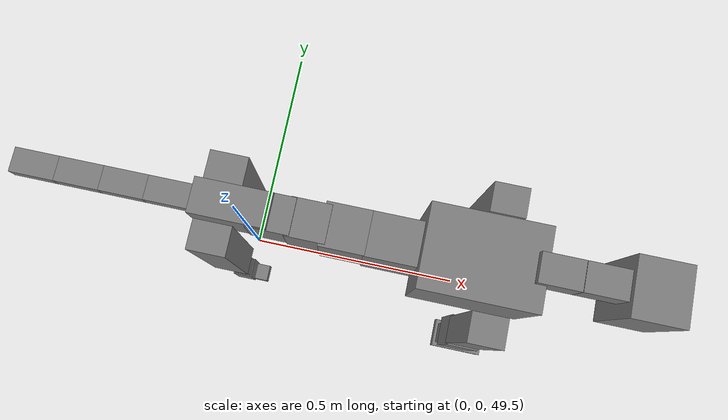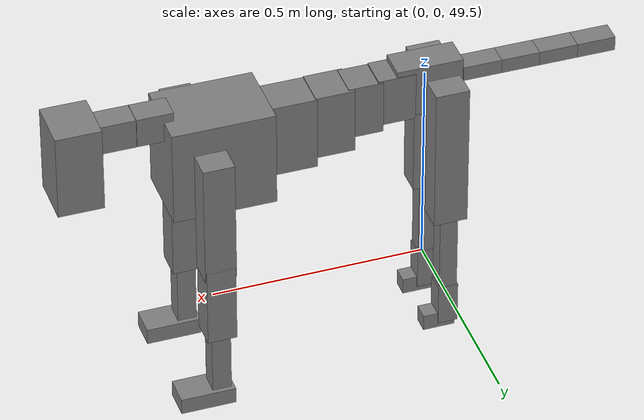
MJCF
<mujoco model="dog">

    <default>
        <joint armature="0.02" stiffness="1" damping="0.2" limited="true"/>
        <geom condim="3" friction="1 0.05 0.05" margin="0.01"/>
        <motor ctrllimited="true" ctrlrange="-1.0 1.0" forcelimited="true" gear="50"/>
    </default>

    <compiler inertiafromgeom="true" angle="radian"/>

    <option timestep="0.016" iterations="50" tolerance="1e-10" solver="Newton" jacobian="dense" cone="pyramidal"/>

    <size nconmax="20000" njmax="60000" nstack="5000000"/>
    <visual>
        <map force="0.1" zfar="30"/>
        <rgba haze="0.15 0.25 0.35 1"/>
        <quality shadowsize="2048"/>
        <global offwidth="800" offheight="800"/>
    </visual>

    <asset>
        <texture type="skybox" builtin="gradient" rgb1="0.3 0.5 0.7" rgb2="0 0 0" width="512" height="512"/>
        <texture name="texplane" type="2d" builtin="checker" rgb1=".2 .3 .4" rgb2=".1 0.15 0.2" width="512" height="512"
                 mark="cross" markrgb=".8 .8 .8"/>
        <texture name="texgeom" type="cube" builtin="flat" mark="cross" width="127" height="1278" rgb1="0.8 0.6 0.4"
                 rgb2="0.8 0.6 0.4" markrgb="1 1 1" random="0.01"/>

        <material name="matplane" reflectance="0.3" texture="texplane" texrepeat="1 1" texuniform="true"/>
        <material name="matgeom" texture="texgeom" texuniform="true" rgba="0.8 0.6 .4 1"/>
    </asset>

    <worldbody>
        <geom name="floor" pos="0 0 0" size="0 0 .25" type="plane" material="matplane" condim="3"/>

        <light directional="false" diffuse=".2 .2 .2" specular="0 0 0" pos="0 0 5" dir="0 0 -1" castshadow="false"/>
        <light mode="targetbodycom" target="torso" directional="false" diffuse=".8 .8 .8" specular="0.3 0.3 0.3"
               pos="0 0 4.0" dir="0 0 -1"/>

        <body name="root" pos="0 0 50">
            <freejoint name="root_1"/>
            <geom type="box" pos="0 0 -0.02" size="0.0774  0.0358  0.063" density="2030"/>

            <body name="spine1" pos="0.054 0 0">
                <joint name="spine1_y" axis="0 1 0" range="0 0.7" limited="true"/>
                <geom type="box" pos="0.02375 0 -0.03" size="0.04375  0.0375  0.05985" density="2030"/>

                <body name="spine2" pos="0.0612 0 0">
                    <joint name="spine2_y" axis="0 1 0" range="-0.15 0.15" limited="true"/>
                    <geom type="box" pos="0.03555  0  -0.04" size="0.04055  0.039  0.06615" density="2030"/>

                    <body name="spine3" pos="0.0730 0 0">
                        <joint name="spine3_y" axis="0 1 0" range="-0.15 0.15" limited="true"/>
                        <geom type="box" pos="0.03555  0  -0.057" size="0.04555  0.0445  0.081" density="2030"/>

                        <body name="spine4" pos="0.0780 0 0">
                            <joint name="spine4_y" axis="0 1 0" range="-0.15 0.15" limited="true"/>
                            <geom type="box" pos="0.05265  0  -0.07" size="0.05265  0.045  0.09135" density="2030"/>

                            <body name="torso" pos="0.1082 0 0">
                                <joint name="torso_y" axis="0 1 0" range="-0.15 0.15" limited="true"/>
                                <geom type="box" pos="0.11925  0  -0.085" size="0.11925  0.085  0.11745"
                                      density="2030"/>

                                <body name="neck1" pos="0.2160  0   0.0180">
                                    <joint name="neck1_y" axis="0 1 0" range="-1.2  -1" limited="true"/>
                                    <geom type="box" pos="0.0423  0  0" size="0.0423  0.03  0.036" density="2325"/>

                                    <body name="neck2" pos="0.0853  0  0">
                                        <joint name="neck2_y" axis="0 1 0" range="0.1  0" limited="true"/>
                                        <geom type="box" pos="0.0423  0  0" size="0.0423  0.03  0.036" density="2325"/>

                                        <body name="head" pos="0.0853  0  0">
                                            <joint name="head_y" axis="0 1 0" range="-0.3  -0.2" limited="true"/>
                                            <geom type="box" pos="0.0531  0  -0.055" size="0.0531  0.06  0.1044"
                                                  density="4030"/>

                                        </body>
                                    </body>
                                </body>

                                <body name="front_shoulder" pos="0.156  0   -0.0480">
                                    <joint name="front_shoulder_y" axis="0 1 0" range="-1 1.5" limited="true"/>
                                    <geom type="box" pos="0 0.13 -0.1260" size="0.0364  0.0311  0.1526" density="1158"/>
                                    <geom type="box" pos="0 -0.13 -0.1260" size="0.0364  0.0311  0.1526"
                                          density="1158"/>

                                    <body name="front_elbow" pos="0  0  -0.2520">
                                        <joint name="front_elbow_y" axis="0 1 0" range="-2 0" limited="true"/>
                                        <geom type="box" pos="0 0.13 -0.0980" size="0.0339  0.0347  0.0980"
                                              density="1081"/>
                                        <geom type="box" pos="0 -0.13 -0.0980" size="0.0339  0.0347  0.0980"
                                              density="1081"/>

                                        <body name="front_wrist" pos="0  0  -0.1959">
                                            <joint name="front_wrist_y" axis="0 1 0" range="-0.2 0" limited="true"/>
                                            <geom type="box" pos="0 0.13 -0.0813" size="0.0222  0.0246  0.0945"
                                                  density="1664"/>
                                            <geom type="box" pos="0 -0.13 -0.0813" size="0.0222  0.0246  0.0945"
                                                  density="1664"/>

                                            <body name="front_finger_end" pos="0  0  -0.1627">
                                                <joint name="front_finger_y" axis="0 1 0" range="-0.4 1"
                                                       limited="true"/>
                                                <geom type="box" pos="0.0351  0.13  -0.0048"
                                                      size="0.0644  0.0351  0.0198" density="1515"/>
                                                <geom type="box" pos="0.0351  -0.13  -0.0048"
                                                      size="0.0644  0.0351  0.0198" density="1515"/>

                                            </body>

                                        </body>
                                    </body>
                                </body>

                            </body>
                        </body>
                    </body>
                </body>
            </body>

            <body name="back_hip" pos="-0.03 0 -0.018">
                <joint name="back_hip_y" axis="0 1 0" range="-1.5 0.3" limited="true"/>
                <geom type="box" pos="0 0.07 -0.1561" size="0.0394  0.0309  0.1789" density="1154"/>
                <geom type="box" pos="0 -0.07 -0.1561" size="0.0394  0.0309  0.1789" density="1154"/>

                <body name="back_knee" pos="0  0  -0.3121">
                    <joint name="back_knee_y" axis="0 1 0" range="0 2.8" limited="true"/>
                    <geom type="box" pos="0 0.07 -0.1120" size="0.0211  0.0208  0.1276" density="1227"/>
                    <geom type="box" pos="0 -0.07 -0.1120" size="0.0211  0.0208  0.1276" density="1227"/>

                    <body name="back_ankle" pos="0  0  -0.2240">
                        <joint name="back_ankle_y" axis="0 1 0" range="-2.2 0" limited="true"/>
                        <geom type="box" pos="0 0.07 -0.0400" size="0.0235  0.0235  0.0512" density="1284"/>
                        <geom type="box" pos="0 -0.07 -0.0400" size="0.0235  0.0235  0.0512" density="1284"/>

                        <body name="back_toe_end" pos="0  0  -0.0799">
                            <joint name="back_toe_y" axis="0 1 0" range="-0.4 1" limited="true"/>
                            <geom type="box" pos="0.0202  0.07  -0.0047" size="0.0371  0.0202  0.0197" density="1515"/>
                            <geom type="box" pos="0.0202  -0.07  -0.0047" size="0.0371  0.0202  0.0197" density="1515"/>

                        </body>
                    </body>
                </body>
            </body>

            <body name="tail1" pos="-0.074 0 -0.006">
                <joint name="tail1_y" axis="0 1 0" range="-0.2 0.2" limited="true"/>
                <geom type="box" pos="-0.0536  0  0" size="0.045  0.025  0.0175" density="1587"/>

                <body name="tail2" pos="-0.09 0 0">
                    <joint name="tail2_y" axis="0 1 0" range="-0.2 0.2" limited="true"/>
                    <geom type="box" pos="-0.0536  0  0" size="0.045  0.025  0.0175" density="1587"/>

                    <body name="tail3" pos="-0.09 0 0">
                        <joint name="tail3_y" axis="0 1 0" range="-0.2 0.2" limited="true"/>
                        <geom type="box" pos="-0.0536  0  0" size="0.045  0.025  0.0175" density="1587"/>

                        <body name="tail4" pos="-0.09 0 0">
                            <joint name="tail4_y" axis="0 1 0" range="-0.2 0.2" limited="true"/>
                            <geom type="box" pos="-0.0536  0  0" size="0.045  0.025  0.0175" density="1587"/>

                        </body>
                    </body>
                </body>
            </body>
        </body>
    </worldbody>

    <actuator>
        <motor joint="spine1_y" forcerange="-150 150     "/>
        <motor joint="spine2_y" forcerange="-150 150     "/>
        <motor joint="spine3_y" forcerange="-150 150     "/>
        <motor joint="spine4_y" forcerange="-150 150     "/>
        <motor joint="torso_y" forcerange="-150 150     "/>
        <motor joint="neck1_y" forcerange="-100 100       "/>
        <motor joint="neck2_y" forcerange="-100 100       "/>
        <motor joint="head_y" forcerange="-150 150       "/>
        <motor joint="front_shoulder_y" forcerange="-139.26 168.39"/>
        <motor joint="front_elbow_y" forcerange="-166.11 186.21"/>
        <motor joint="front_wrist_y" forcerange="-78.20 118.72"/>
        <motor joint="front_finger_y" forcerange="-83.70 63.53"/>
        <motor joint="back_hip_y" forcerange="-228.87 383.63"/>
        <motor joint="back_knee_y" forcerange="-215.91 287.30"/>
        <motor joint="back_angle_y" forcerange="-70.38 206.38"/>
        <motor joint="back_toe_y" forcerange="-30.50 51.46"/>
        <motor joint="tail1_y" forcerange="-50 50     "/>
        <motor joint="tail2_y" forcerange="-50 50     "/>
        <motor joint="tail3_y" forcerange="-50 50     "/>
        <motor joint="tail4_y" forcerange="-50 50     "/>
    </actuator>
</mujoco>
